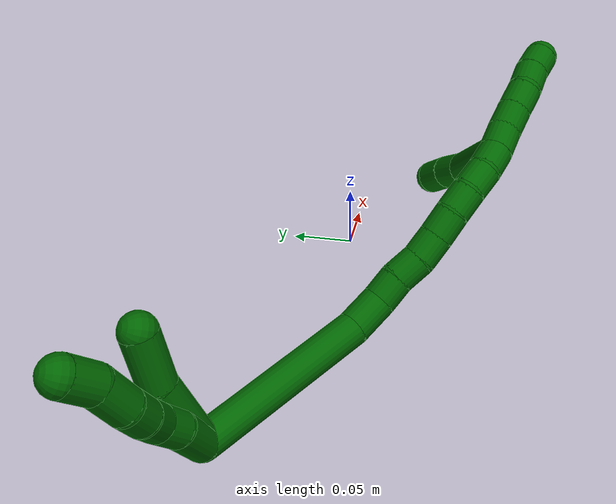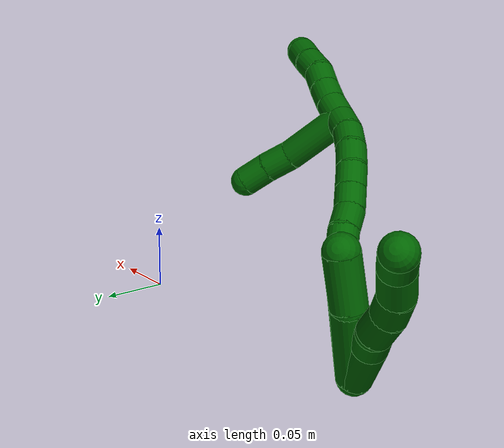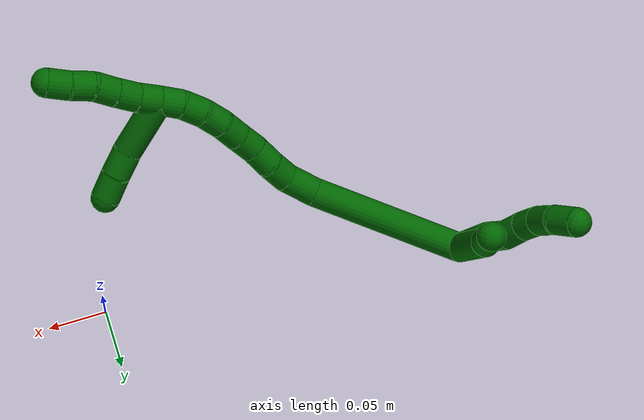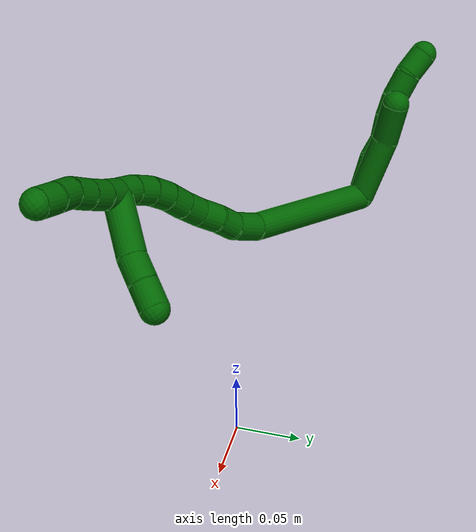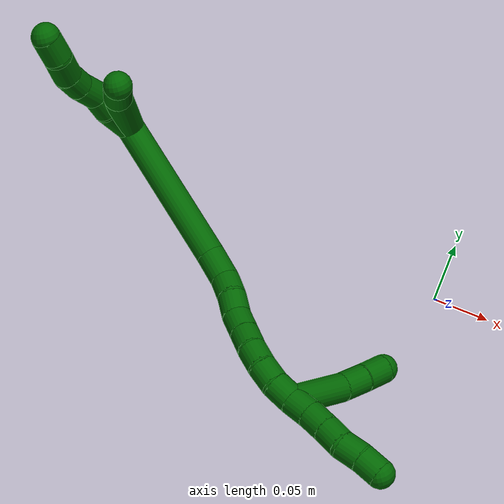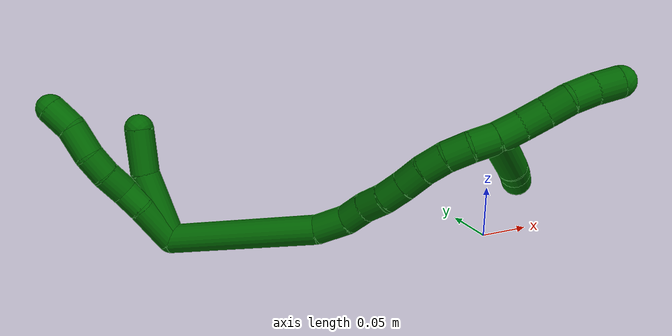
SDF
<sdf version="1.7">
 <world name="default">
  <model name="6">
   <static>0</static>
   <link name="6">
    <collision name="collision-cylinder-e_1_2_8">
     <pose>0.000185 -0.010948 0.015155 0.625622 0.009898 0.003201</pose>
     <geometry><cylinder><radius>0.0125</radius><length>0.037394</length></cylinder></geometry>
     <surface>
      <friction><ode><mu>1.16</mu><mu2>1.16</mu2><slip1>0</slip1><slip2>0</slip2></ode></friction>
      <contact><ode><kp>1e+06</kp><kd>1</kd><max_vel>0</max_vel><min_depth>0.001</min_depth></ode></contact>
     </surface>
    </collision>
    <visual name="visual-cylinder-e_1_2_8">
     <pose>0.000185 -0.010948 0.015155 0.625622 0.009898 0.003201</pose>
     <geometry><cylinder><radius>0.0125</radius><length>0.037394</length></cylinder></geometry>
     <material><ambient>0 0.392157 0.003922 1</ambient></material>
    </visual>
    <collision name="collision-cylinder-e_2_8_9">
     <pose>0.000195 -0.025958 0.039692 0.408565 -0.017139 -0.003551</pose>
     <geometry><cylinder><radius>0.0125</radius><length>0.020449</length></cylinder></geometry>
     <surface>
      <friction><ode><mu>1.16</mu><mu2>1.16</mu2><slip1>0</slip1><slip2>0</slip2></ode></friction>
      <contact><ode><kp>1e+06</kp><kd>1</kd><max_vel>0</max_vel><min_depth>0.001</min_depth></ode></contact>
     </surface>
    </collision>
    <visual name="visual-cylinder-e_2_8_9">
     <pose>0.000195 -0.025958 0.039692 0.408565 -0.017139 -0.003551</pose>
     <geometry><cylinder><radius>0.0125</radius><length>0.020449</length></cylinder></geometry>
     <material><ambient>0 0.392157 0.003922 1</ambient></material>
    </visual>
    <collision name="collision-cylinder-e_3_9_10">
     <pose>-0.001084 -0.037105 0.0575 0.699105 -0.099957 -0.036463</pose>
     <geometry><cylinder><radius>0.0125</radius><length>0.022128</length></cylinder></geometry>
     <surface>
      <friction><ode><mu>1.16</mu><mu2>1.16</mu2><slip1>0</slip1><slip2>0</slip2></ode></friction>
      <contact><ode><kp>1e+06</kp><kd>1</kd><max_vel>0</max_vel><min_depth>0.001</min_depth></ode></contact>
     </surface>
    </collision>
    <visual name="visual-cylinder-e_3_9_10">
     <pose>-0.001084 -0.037105 0.0575 0.699105 -0.099957 -0.036463</pose>
     <geometry><cylinder><radius>0.0125</radius><length>0.022128</length></cylinder></geometry>
     <material><ambient>0 0.392157 0.003922 1</ambient></material>
    </visual>
    <collision name="collision-cylinder-e_4_10_11">
     <pose>-0.0017 -0.049938 0.074248 0.604563 0.048231 0.015043</pose>
     <geometry><cylinder><radius>0.0125</radius><length>0.020252</length></cylinder></geometry>
     <surface>
      <friction><ode><mu>1.16</mu><mu2>1.16</mu2><slip1>0</slip1><slip2>0</slip2></ode></friction>
      <contact><ode><kp>1e+06</kp><kd>1</kd><max_vel>0</max_vel><min_depth>0.001</min_depth></ode></contact>
     </surface>
    </collision>
    <visual name="visual-cylinder-e_4_10_11">
     <pose>-0.0017 -0.049938 0.074248 0.604563 0.048231 0.015043</pose>
     <geometry><cylinder><radius>0.0125</radius><length>0.020252</length></cylinder></geometry>
     <material><ambient>0 0.392157 0.003922 1</ambient></material>
    </visual>
    <collision name="collision-cylinder-e_5_11_12">
     <pose>0.001828 -0.061288 0.094169 0.449824 0.231782 0.053254</pose>
     <geometry><cylinder><radius>0.0125</radius><length>0.02647</length></cylinder></geometry>
     <surface>
      <friction><ode><mu>1.16</mu><mu2>1.16</mu2><slip1>0</slip1><slip2>0</slip2></ode></friction>
      <contact><ode><kp>1e+06</kp><kd>1</kd><max_vel>0</max_vel><min_depth>0.001</min_depth></ode></contact>
     </surface>
    </collision>
    <visual name="visual-cylinder-e_5_11_12">
     <pose>0.001828 -0.061288 0.094169 0.449824 0.231782 0.053254</pose>
     <geometry><cylinder><radius>0.0125</radius><length>0.02647</length></cylinder></geometry>
     <material><ambient>0 0.392157 0.003922 1</ambient></material>
    </visual>
    <collision name="collision-cylinder-e_6_12_6">
     <pose>0.004833 -0.069959 0.11701 0.266597 -0.003029 -0.000406</pose>
     <geometry><cylinder><radius>0.0125</radius><length>0.023306</length></cylinder></geometry>
     <surface>
      <friction><ode><mu>1.16</mu><mu2>1.16</mu2><slip1>0</slip1><slip2>0</slip2></ode></friction>
      <contact><ode><kp>1e+06</kp><kd>1</kd><max_vel>0</max_vel><min_depth>0.001</min_depth></ode></contact>
     </surface>
    </collision>
    <visual name="visual-cylinder-e_6_12_6">
     <pose>0.004833 -0.069959 0.11701 0.266597 -0.003029 -0.000406</pose>
     <geometry><cylinder><radius>0.0125</radius><length>0.023306</length></cylinder></geometry>
     <material><ambient>0 0.392157 0.003922 1</ambient></material>
    </visual>
    <collision name="collision-cylinder-e_1_2_13">
     <pose>0.011478 -0.015153 0.023942 0.564263 0.384892 0.112844</pose>
     <geometry><cylinder><radius>0.0125</radius><length>0.061141</length></cylinder></geometry>
     <surface>
      <friction><ode><mu>1.16</mu><mu2>1.16</mu2><slip1>0</slip1><slip2>0</slip2></ode></friction>
      <contact><ode><kp>1e+06</kp><kd>1</kd><max_vel>0</max_vel><min_depth>0.001</min_depth></ode></contact>
     </surface>
    </collision>
    <visual name="visual-cylinder-e_1_2_13">
     <pose>0.011478 -0.015153 0.023942 0.564263 0.384892 0.112844</pose>
     <geometry><cylinder><radius>0.0125</radius><length>0.061141</length></cylinder></geometry>
     <material><ambient>0 0.392157 0.003922 1</ambient></material>
    </visual>
    <collision name="collision-cylinder-e_2_13_5">
     <pose>0.033833 -0.040995 0.059922 0.726062 0.594172 0.23155</pose>
     <geometry><cylinder><radius>0.0125</radius><length>0.038859</length></cylinder></geometry>
     <surface>
      <friction><ode><mu>1.16</mu><mu2>1.16</mu2><slip1>0</slip1><slip2>0</slip2></ode></friction>
      <contact><ode><kp>1e+06</kp><kd>1</kd><max_vel>0</max_vel><min_depth>0.001</min_depth></ode></contact>
     </surface>
    </collision>
    <visual name="visual-cylinder-e_2_13_5">
     <pose>0.033833 -0.040995 0.059922 0.726062 0.594172 0.23155</pose>
     <geometry><cylinder><radius>0.0125</radius><length>0.038859</length></cylinder></geometry>
     <material><ambient>0 0.392157 0.003922 1</ambient></material>
    </visual>
    <collision name="collision-cylinder-e_1_2_14">
     <pose>0.038749 -0.019944 -0.049766 2.76044 0.625833 2.06627</pose>
     <geometry><cylinder><radius>0.0125</radius><length>0.132301</length></cylinder></geometry>
     <surface>
      <friction><ode><mu>1.16</mu><mu2>1.16</mu2><slip1>0</slip1><slip2>0</slip2></ode></friction>
      <contact><ode><kp>1e+06</kp><kd>1</kd><max_vel>0</max_vel><min_depth>0.001</min_depth></ode></contact>
     </surface>
    </collision>
    <visual name="visual-cylinder-e_1_2_14">
     <pose>0.038749 -0.019944 -0.049766 2.76044 0.625833 2.06627</pose>
     <geometry><cylinder><radius>0.0125</radius><length>0.132301</length></cylinder></geometry>
     <material><ambient>0 0.392157 0.003922 1</ambient></material>
    </visual>
    <collision name="collision-cylinder-e_2_14_15">
     <pose>0.086731 -0.046533 -0.107312 2.43466 0.734106 1.61198</pose>
     <geometry><cylinder><radius>0.0125</radius><length>0.027564</length></cylinder></geometry>
     <surface>
      <friction><ode><mu>1.16</mu><mu2>1.16</mu2><slip1>0</slip1><slip2>0</slip2></ode></friction>
      <contact><ode><kp>1e+06</kp><kd>1</kd><max_vel>0</max_vel><min_depth>0.001</min_depth></ode></contact>
     </surface>
    </collision>
    <visual name="visual-cylinder-e_2_14_15">
     <pose>0.086731 -0.046533 -0.107312 2.43466 0.734106 1.61198</pose>
     <geometry><cylinder><radius>0.0125</radius><length>0.027564</length></cylinder></geometry>
     <material><ambient>0 0.392157 0.003922 1</ambient></material>
    </visual>
    <collision name="collision-cylinder-e_3_15_16">
     <pose>0.102392 -0.060039 -0.11855 2.03767 0.696754 1.06574</pose>
     <geometry><cylinder><radius>0.0125</radius><length>0.020035</length></cylinder></geometry>
     <surface>
      <friction><ode><mu>1.16</mu><mu2>1.16</mu2><slip1>0</slip1><slip2>0</slip2></ode></friction>
      <contact><ode><kp>1e+06</kp><kd>1</kd><max_vel>0</max_vel><min_depth>0.001</min_depth></ode></contact>
     </surface>
    </collision>
    <visual name="visual-cylinder-e_3_15_16">
     <pose>0.102392 -0.060039 -0.11855 2.03767 0.696754 1.06574</pose>
     <geometry><cylinder><radius>0.0125</radius><length>0.020035</length></cylinder></geometry>
     <material><ambient>0 0.392157 0.003922 1</ambient></material>
    </visual>
    <collision name="collision-cylinder-e_4_16_17">
     <pose>0.114053 -0.074018 -0.126769 2.16025 0.548395 0.969245</pose>
     <geometry><cylinder><radius>0.0125</radius><length>0.020071</length></cylinder></geometry>
     <surface>
      <friction><ode><mu>1.16</mu><mu2>1.16</mu2><slip1>0</slip1><slip2>0</slip2></ode></friction>
      <contact><ode><kp>1e+06</kp><kd>1</kd><max_vel>0</max_vel><min_depth>0.001</min_depth></ode></contact>
     </surface>
    </collision>
    <visual name="visual-cylinder-e_4_16_17">
     <pose>0.114053 -0.074018 -0.126769 2.16025 0.548395 0.969245</pose>
     <geometry><cylinder><radius>0.0125</radius><length>0.020071</length></cylinder></geometry>
     <material><ambient>0 0.392157 0.003922 1</ambient></material>
    </visual>
    <collision name="collision-cylinder-e_5_17_18">
     <pose>0.126035 -0.087677 -0.13498 2.05624 0.739916 1.14297</pose>
     <geometry><cylinder><radius>0.0125</radius><length>0.020024</length></cylinder></geometry>
     <surface>
      <friction><ode><mu>1.16</mu><mu2>1.16</mu2><slip1>0</slip1><slip2>0</slip2></ode></friction>
      <contact><ode><kp>1e+06</kp><kd>1</kd><max_vel>0</max_vel><min_depth>0.001</min_depth></ode></contact>
     </surface>
    </collision>
    <visual name="visual-cylinder-e_5_17_18">
     <pose>0.126035 -0.087677 -0.13498 2.05624 0.739916 1.14297</pose>
     <geometry><cylinder><radius>0.0125</radius><length>0.020024</length></cylinder></geometry>
     <material><ambient>0 0.392157 0.003922 1</ambient></material>
    </visual>
    <collision name="collision-cylinder-e_6_18_19">
     <pose>0.139605 -0.100951 -0.141292 1.97266 0.750261 1.07378</pose>
     <geometry><cylinder><radius>0.0125</radius><length>0.020005</length></cylinder></geometry>
     <surface>
      <friction><ode><mu>1.16</mu><mu2>1.16</mu2><slip1>0</slip1><slip2>0</slip2></ode></friction>
      <contact><ode><kp>1e+06</kp><kd>1</kd><max_vel>0</max_vel><min_depth>0.001</min_depth></ode></contact>
     </surface>
    </collision>
    <visual name="visual-cylinder-e_6_18_19">
     <pose>0.139605 -0.100951 -0.141292 1.97266 0.750261 1.07378</pose>
     <geometry><cylinder><radius>0.0125</radius><length>0.020005</length></cylinder></geometry>
     <material><ambient>0 0.392157 0.003922 1</ambient></material>
    </visual>
    <collision name="collision-cylinder-e_7_19_20">
     <pose>0.153583 -0.113431 -0.148121 2.17507 0.797846 1.35346</pose>
     <geometry><cylinder><radius>0.0125</radius><length>0.02</length></cylinder></geometry>
     <surface>
      <friction><ode><mu>1.16</mu><mu2>1.16</mu2><slip1>0</slip1><slip2>0</slip2></ode></friction>
      <contact><ode><kp>1e+06</kp><kd>1</kd><max_vel>0</max_vel><min_depth>0.001</min_depth></ode></contact>
     </surface>
    </collision>
    <visual name="visual-cylinder-e_7_19_20">
     <pose>0.153583 -0.113431 -0.148121 2.17507 0.797846 1.35346</pose>
     <geometry><cylinder><radius>0.0125</radius><length>0.02</length></cylinder></geometry>
     <material><ambient>0 0.392157 0.003922 1</ambient></material>
    </visual>
    <collision name="collision-cylinder-e_8_20_21">
     <pose>0.16816 -0.123442 -0.157263 2.4523 0.835734 1.78183</pose>
     <geometry><cylinder><radius>0.0125</radius><length>0.02</length></cylinder></geometry>
     <surface>
      <friction><ode><mu>1.16</mu><mu2>1.16</mu2><slip1>0</slip1><slip2>0</slip2></ode></friction>
      <contact><ode><kp>1e+06</kp><kd>1</kd><max_vel>0</max_vel><min_depth>0.001</min_depth></ode></contact>
     </surface>
    </collision>
    <visual name="visual-cylinder-e_8_20_21">
     <pose>0.16816 -0.123442 -0.157263 2.4523 0.835734 1.78183</pose>
     <geometry><cylinder><radius>0.0125</radius><length>0.02</length></cylinder></geometry>
     <material><ambient>0 0.392157 0.003922 1</ambient></material>
    </visual>
    <collision name="collision-cylinder-e_9_21_1">
     <pose>0.183642 -0.129948 -0.167912 2.75308 0.938002 2.4009</pose>
     <geometry><cylinder><radius>0.0125</radius><length>0.02</length></cylinder></geometry>
     <surface>
      <friction><ode><mu>1.16</mu><mu2>1.16</mu2><slip1>0</slip1><slip2>0</slip2></ode></friction>
      <contact><ode><kp>1e+06</kp><kd>1</kd><max_vel>0</max_vel><min_depth>0.001</min_depth></ode></contact>
     </surface>
    </collision>
    <visual name="visual-cylinder-e_9_21_1">
     <pose>0.183642 -0.129948 -0.167912 2.75308 0.938002 2.4009</pose>
     <geometry><cylinder><radius>0.0125</radius><length>0.02</length></cylinder></geometry>
     <material><ambient>0 0.392157 0.003922 1</ambient></material>
    </visual>
    <collision name="collision-cylinder-e_1_1_22">
     <pose>0.199728 -0.108216 -0.183096 -1.9557 0.300773 -0.442399</pose>
     <geometry><cylinder><radius>0.0125</radius><length>0.054159</length></cylinder></geometry>
     <surface>
      <friction><ode><mu>1.16</mu><mu2>1.16</mu2><slip1>0</slip1><slip2>0</slip2></ode></friction>
      <contact><ode><kp>1e+06</kp><kd>1</kd><max_vel>0</max_vel><min_depth>0.001</min_depth></ode></contact>
     </surface>
    </collision>
    <visual name="visual-cylinder-e_1_1_22">
     <pose>0.199728 -0.108216 -0.183096 -1.9557 0.300773 -0.442399</pose>
     <geometry><cylinder><radius>0.0125</radius><length>0.054159</length></cylinder></geometry>
     <material><ambient>0 0.392157 0.003922 1</ambient></material>
    </visual>
    <collision name="collision-cylinder-e_2_22_23">
     <pose>0.212162 -0.073751 -0.194943 -1.77156 0.390788 -0.475352</pose>
     <geometry><cylinder><radius>0.0125</radius><length>0.023164</length></cylinder></geometry>
     <surface>
      <friction><ode><mu>1.16</mu><mu2>1.16</mu2><slip1>0</slip1><slip2>0</slip2></ode></friction>
      <contact><ode><kp>1e+06</kp><kd>1</kd><max_vel>0</max_vel><min_depth>0.001</min_depth></ode></contact>
     </surface>
    </collision>
    <visual name="visual-cylinder-e_2_22_23">
     <pose>0.212162 -0.073751 -0.194943 -1.77156 0.390788 -0.475352</pose>
     <geometry><cylinder><radius>0.0125</radius><length>0.023164</length></cylinder></geometry>
     <material><ambient>0 0.392157 0.003922 1</ambient></material>
    </visual>
    <collision name="collision-cylinder-e_3_23_4">
     <pose>0.220096 -0.052717 -0.199327 -1.78094 0.315837 -0.38862</pose>
     <geometry><cylinder><radius>0.0125</radius><length>0.022677</length></cylinder></geometry>
     <surface>
      <friction><ode><mu>1.16</mu><mu2>1.16</mu2><slip1>0</slip1><slip2>0</slip2></ode></friction>
      <contact><ode><kp>1e+06</kp><kd>1</kd><max_vel>0</max_vel><min_depth>0.001</min_depth></ode></contact>
     </surface>
    </collision>
    <visual name="visual-cylinder-e_3_23_4">
     <pose>0.220096 -0.052717 -0.199327 -1.78094 0.315837 -0.38862</pose>
     <geometry><cylinder><radius>0.0125</radius><length>0.022677</length></cylinder></geometry>
     <material><ambient>0 0.392157 0.003922 1</ambient></material>
    </visual>
    <collision name="collision-cylinder-e_1_1_24">
     <pose>0.200472 -0.134583 -0.177558 2.62057 1.06888 2.29527</pose>
     <geometry><cylinder><radius>0.0125</radius><length>0.02</length></cylinder></geometry>
     <surface>
      <friction><ode><mu>1.16</mu><mu2>1.16</mu2><slip1>0</slip1><slip2>0</slip2></ode></friction>
      <contact><ode><kp>1e+06</kp><kd>1</kd><max_vel>0</max_vel><min_depth>0.001</min_depth></ode></contact>
     </surface>
    </collision>
    <visual name="visual-cylinder-e_1_1_24">
     <pose>0.200472 -0.134583 -0.177558 2.62057 1.06888 2.29527</pose>
     <geometry><cylinder><radius>0.0125</radius><length>0.02</length></cylinder></geometry>
     <material><ambient>0 0.392157 0.003922 1</ambient></material>
    </visual>
    <collision name="collision-cylinder-e_2_24_25">
     <pose>0.217758 -0.140313 -0.185767 2.45091 1.01966 1.99813</pose>
     <geometry><cylinder><radius>0.0125</radius><length>0.02</length></cylinder></geometry>
     <surface>
      <friction><ode><mu>1.16</mu><mu2>1.16</mu2><slip1>0</slip1><slip2>0</slip2></ode></friction>
      <contact><ode><kp>1e+06</kp><kd>1</kd><max_vel>0</max_vel><min_depth>0.001</min_depth></ode></contact>
     </surface>
    </collision>
    <visual name="visual-cylinder-e_2_24_25">
     <pose>0.217758 -0.140313 -0.185767 2.45091 1.01966 1.99813</pose>
     <geometry><cylinder><radius>0.0125</radius><length>0.02</length></cylinder></geometry>
     <material><ambient>0 0.392157 0.003922 1</ambient></material>
    </visual>
    <collision name="collision-cylinder-e_3_25_26">
     <pose>0.23464 -0.147422 -0.193782 2.38269 0.990472 1.86966</pose>
     <geometry><cylinder><radius>0.0125</radius><length>0.02</length></cylinder></geometry>
     <surface>
      <friction><ode><mu>1.16</mu><mu2>1.16</mu2><slip1>0</slip1><slip2>0</slip2></ode></friction>
      <contact><ode><kp>1e+06</kp><kd>1</kd><max_vel>0</max_vel><min_depth>0.001</min_depth></ode></contact>
     </surface>
    </collision>
    <visual name="visual-cylinder-e_3_25_26">
     <pose>0.23464 -0.147422 -0.193782 2.38269 0.990472 1.86966</pose>
     <geometry><cylinder><radius>0.0125</radius><length>0.02</length></cylinder></geometry>
     <material><ambient>0 0.392157 0.003922 1</ambient></material>
    </visual>
    <collision name="collision-cylinder-e_4_26_27">
     <pose>0.25175 -0.152306 -0.202477 2.91044 1.06487 2.7525</pose>
     <geometry><cylinder><radius>0.0125</radius><length>0.02</length></cylinder></geometry>
     <surface>
      <friction><ode><mu>1.16</mu><mu2>1.16</mu2><slip1>0</slip1><slip2>0</slip2></ode></friction>
      <contact><ode><kp>1e+06</kp><kd>1</kd><max_vel>0</max_vel><min_depth>0.001</min_depth></ode></contact>
     </surface>
    </collision>
    <visual name="visual-cylinder-e_4_26_27">
     <pose>0.25175 -0.152306 -0.202477 2.91044 1.06487 2.7525</pose>
     <geometry><cylinder><radius>0.0125</radius><length>0.02</length></cylinder></geometry>
     <material><ambient>0 0.392157 0.003922 1</ambient></material>
    </visual>
    <collision name="collision-cylinder-e_5_27_3">
     <pose>0.268541 -0.155055 -0.212907 2.86221 0.934474 2.59796</pose>
     <geometry><cylinder><radius>0.0125</radius><length>0.02</length></cylinder></geometry>
     <surface>
      <friction><ode><mu>1.16</mu><mu2>1.16</mu2><slip1>0</slip1><slip2>0</slip2></ode></friction>
      <contact><ode><kp>1e+06</kp><kd>1</kd><max_vel>0</max_vel><min_depth>0.001</min_depth></ode></contact>
     </surface>
    </collision>
    <visual name="visual-cylinder-e_5_27_3">
     <pose>0.268541 -0.155055 -0.212907 2.86221 0.934474 2.59796</pose>
     <geometry><cylinder><radius>0.0125</radius><length>0.02</length></cylinder></geometry>
     <material><ambient>0 0.392157 0.003922 1</ambient></material>
    </visual>
    <collision name="collision-sphere-3">
     <pose>0.276583 -0.156693 -0.218619 0 -0 0</pose>
     <geometry><sphere><radius>0.0125</radius></sphere></geometry>
     <surface>
      <friction><ode><mu>1.16</mu><mu2>1.16</mu2><slip1>0</slip1><slip2>0</slip2></ode></friction>
      <contact><ode><kp>1e+06</kp><kd>1</kd><max_vel>0</max_vel><min_depth>0.001</min_depth></ode></contact>
     </surface>
    </collision>
    <visual name="visual-sphere-3">
     <pose>0.276583 -0.156693 -0.218619 0 -0 0</pose>
     <geometry><sphere><radius>0.0125</radius></sphere></geometry>
     <material><ambient>0 0.392157 0.003922 1</ambient></material>
    </visual>
    <collision name="collision-sphere-27">
     <pose>0.260498 -0.153416 -0.207195 0 -0 0</pose>
     <geometry><sphere><radius>0.0125</radius></sphere></geometry>
     <surface>
      <friction><ode><mu>1.16</mu><mu2>1.16</mu2><slip1>0</slip1><slip2>0</slip2></ode></friction>
      <contact><ode><kp>1e+06</kp><kd>1</kd><max_vel>0</max_vel><min_depth>0.001</min_depth></ode></contact>
     </surface>
    </collision>
    <visual name="visual-sphere-27">
     <pose>0.260498 -0.153416 -0.207195 0 -0 0</pose>
     <geometry><sphere><radius>0.0125</radius></sphere></geometry>
     <material><ambient>0 0.392157 0.003922 1</ambient></material>
    </visual>
    <collision name="collision-sphere-26">
     <pose>0.243003 -0.151195 -0.19776 0 -0 0</pose>
     <geometry><sphere><radius>0.0125</radius></sphere></geometry>
     <surface>
      <friction><ode><mu>1.16</mu><mu2>1.16</mu2><slip1>0</slip1><slip2>0</slip2></ode></friction>
      <contact><ode><kp>1e+06</kp><kd>1</kd><max_vel>0</max_vel><min_depth>0.001</min_depth></ode></contact>
     </surface>
    </collision>
    <visual name="visual-sphere-26">
     <pose>0.243003 -0.151195 -0.19776 0 -0 0</pose>
     <geometry><sphere><radius>0.0125</radius></sphere></geometry>
     <material><ambient>0 0.392157 0.003922 1</ambient></material>
    </visual>
    <collision name="collision-sphere-25">
     <pose>0.226277 -0.143649 -0.189803 0 -0 0</pose>
     <geometry><sphere><radius>0.0125</radius></sphere></geometry>
     <surface>
      <friction><ode><mu>1.16</mu><mu2>1.16</mu2><slip1>0</slip1><slip2>0</slip2></ode></friction>
      <contact><ode><kp>1e+06</kp><kd>1</kd><max_vel>0</max_vel><min_depth>0.001</min_depth></ode></contact>
     </surface>
    </collision>
    <visual name="visual-sphere-25">
     <pose>0.226277 -0.143649 -0.189803 0 -0 0</pose>
     <geometry><sphere><radius>0.0125</radius></sphere></geometry>
     <material><ambient>0 0.392157 0.003922 1</ambient></material>
    </visual>
    <collision name="collision-sphere-24">
     <pose>0.209239 -0.136977 -0.181731 0 -0 0</pose>
     <geometry><sphere><radius>0.0125</radius></sphere></geometry>
     <surface>
      <friction><ode><mu>1.16</mu><mu2>1.16</mu2><slip1>0</slip1><slip2>0</slip2></ode></friction>
      <contact><ode><kp>1e+06</kp><kd>1</kd><max_vel>0</max_vel><min_depth>0.001</min_depth></ode></contact>
     </surface>
    </collision>
    <visual name="visual-sphere-24">
     <pose>0.209239 -0.136977 -0.181731 0 -0 0</pose>
     <geometry><sphere><radius>0.0125</radius></sphere></geometry>
     <material><ambient>0 0.392157 0.003922 1</ambient></material>
    </visual>
    <collision name="collision-sphere-4">
     <pose>0.223618 -0.042176 -0.201575 0 -0 0</pose>
     <geometry><sphere><radius>0.0125</radius></sphere></geometry>
     <surface>
      <friction><ode><mu>1.16</mu><mu2>1.16</mu2><slip1>0</slip1><slip2>0</slip2></ode></friction>
      <contact><ode><kp>1e+06</kp><kd>1</kd><max_vel>0</max_vel><min_depth>0.001</min_depth></ode></contact>
     </surface>
    </collision>
    <visual name="visual-sphere-4">
     <pose>0.223618 -0.042176 -0.201575 0 -0 0</pose>
     <geometry><sphere><radius>0.0125</radius></sphere></geometry>
     <material><ambient>0 0.392157 0.003922 1</ambient></material>
    </visual>
    <collision name="collision-sphere-23">
     <pose>0.216574 -0.063257 -0.197078 0 -0 0</pose>
     <geometry><sphere><radius>0.0125</radius></sphere></geometry>
     <surface>
      <friction><ode><mu>1.16</mu><mu2>1.16</mu2><slip1>0</slip1><slip2>0</slip2></ode></friction>
      <contact><ode><kp>1e+06</kp><kd>1</kd><max_vel>0</max_vel><min_depth>0.001</min_depth></ode></contact>
     </surface>
    </collision>
    <visual name="visual-sphere-23">
     <pose>0.216574 -0.063257 -0.197078 0 -0 0</pose>
     <geometry><sphere><radius>0.0125</radius></sphere></geometry>
     <material><ambient>0 0.392157 0.003922 1</ambient></material>
    </visual>
    <collision name="collision-sphere-22">
     <pose>0.207751 -0.084245 -0.192807 0 -0 0</pose>
     <geometry><sphere><radius>0.0125</radius></sphere></geometry>
     <surface>
      <friction><ode><mu>1.16</mu><mu2>1.16</mu2><slip1>0</slip1><slip2>0</slip2></ode></friction>
      <contact><ode><kp>1e+06</kp><kd>1</kd><max_vel>0</max_vel><min_depth>0.001</min_depth></ode></contact>
     </surface>
    </collision>
    <visual name="visual-sphere-22">
     <pose>0.207751 -0.084245 -0.192807 0 -0 0</pose>
     <geometry><sphere><radius>0.0125</radius></sphere></geometry>
     <material><ambient>0 0.392157 0.003922 1</ambient></material>
    </visual>
    <collision name="collision-sphere-1">
     <pose>0.191706 -0.132188 -0.173385 0 -0 0</pose>
     <geometry><sphere><radius>0.0125</radius></sphere></geometry>
     <surface>
      <friction><ode><mu>1.16</mu><mu2>1.16</mu2><slip1>0</slip1><slip2>0</slip2></ode></friction>
      <contact><ode><kp>1e+06</kp><kd>1</kd><max_vel>0</max_vel><min_depth>0.001</min_depth></ode></contact>
     </surface>
    </collision>
    <visual name="visual-sphere-1">
     <pose>0.191706 -0.132188 -0.173385 0 -0 0</pose>
     <geometry><sphere><radius>0.0125</radius></sphere></geometry>
     <material><ambient>0 0.392157 0.003922 1</ambient></material>
    </visual>
    <collision name="collision-sphere-21">
     <pose>0.175578 -0.127707 -0.162439 0 -0 0</pose>
     <geometry><sphere><radius>0.0125</radius></sphere></geometry>
     <surface>
      <friction><ode><mu>1.16</mu><mu2>1.16</mu2><slip1>0</slip1><slip2>0</slip2></ode></friction>
      <contact><ode><kp>1e+06</kp><kd>1</kd><max_vel>0</max_vel><min_depth>0.001</min_depth></ode></contact>
     </surface>
    </collision>
    <visual name="visual-sphere-21">
     <pose>0.175578 -0.127707 -0.162439 0 -0 0</pose>
     <geometry><sphere><radius>0.0125</radius></sphere></geometry>
     <material><ambient>0 0.392157 0.003922 1</ambient></material>
    </visual>
    <collision name="collision-sphere-12">
     <pose>0.004868 -0.066889 0.105769 0 -0 0</pose>
     <geometry><sphere><radius>0.0125</radius></sphere></geometry>
     <surface>
      <friction><ode><mu>1.16</mu><mu2>1.16</mu2><slip1>0</slip1><slip2>0</slip2></ode></friction>
      <contact><ode><kp>1e+06</kp><kd>1</kd><max_vel>0</max_vel><min_depth>0.001</min_depth></ode></contact>
     </surface>
    </collision>
    <visual name="visual-sphere-12">
     <pose>0.004868 -0.066889 0.105769 0 -0 0</pose>
     <geometry><sphere><radius>0.0125</radius></sphere></geometry>
     <material><ambient>0 0.392157 0.003922 1</ambient></material>
    </visual>
    <collision name="collision-sphere-11">
     <pose>-0.001212 -0.055687 0.082569 0 -0 0</pose>
     <geometry><sphere><radius>0.0125</radius></sphere></geometry>
     <surface>
      <friction><ode><mu>1.16</mu><mu2>1.16</mu2><slip1>0</slip1><slip2>0</slip2></ode></friction>
      <contact><ode><kp>1e+06</kp><kd>1</kd><max_vel>0</max_vel><min_depth>0.001</min_depth></ode></contact>
     </surface>
    </collision>
    <visual name="visual-sphere-11">
     <pose>-0.001212 -0.055687 0.082569 0 -0 0</pose>
     <geometry><sphere><radius>0.0125</radius></sphere></geometry>
     <material><ambient>0 0.392157 0.003922 1</ambient></material>
    </visual>
    <collision name="collision-sphere-10">
     <pose>-0.002189 -0.044189 0.065926 0 -0 0</pose>
     <geometry><sphere><radius>0.0125</radius></sphere></geometry>
     <surface>
      <friction><ode><mu>1.16</mu><mu2>1.16</mu2><slip1>0</slip1><slip2>0</slip2></ode></friction>
      <contact><ode><kp>1e+06</kp><kd>1</kd><max_vel>0</max_vel><min_depth>0.001</min_depth></ode></contact>
     </surface>
    </collision>
    <visual name="visual-sphere-10">
     <pose>-0.002189 -0.044189 0.065926 0 -0 0</pose>
     <geometry><sphere><radius>0.0125</radius></sphere></geometry>
     <material><ambient>0 0.392157 0.003922 1</ambient></material>
    </visual>
    <collision name="collision-sphere-9">
     <pose>2e-05 -0.03002 0.049073 0 -0 0</pose>
     <geometry><sphere><radius>0.0125</radius></sphere></geometry>
     <surface>
      <friction><ode><mu>1.16</mu><mu2>1.16</mu2><slip1>0</slip1><slip2>0</slip2></ode></friction>
      <contact><ode><kp>1e+06</kp><kd>1</kd><max_vel>0</max_vel><min_depth>0.001</min_depth></ode></contact>
     </surface>
    </collision>
    <visual name="visual-sphere-9">
     <pose>2e-05 -0.03002 0.049073 0 -0 0</pose>
     <geometry><sphere><radius>0.0125</radius></sphere></geometry>
     <material><ambient>0 0.392157 0.003922 1</ambient></material>
    </visual>
    <collision name="collision-sphere-2">
     <geometry><sphere><radius>0.0125</radius></sphere></geometry>
     <surface>
      <friction><ode><mu>1.16</mu><mu2>1.16</mu2><slip1>0</slip1><slip2>0</slip2></ode></friction>
      <contact><ode><kp>1e+06</kp><kd>1</kd><max_vel>0</max_vel><min_depth>0.001</min_depth></ode></contact>
     </surface>
    </collision>
    <visual name="visual-sphere-2">
     <geometry><sphere><radius>0.0125</radius></sphere></geometry>
     <material><ambient>0 0.392157 0.003922 1</ambient></material>
    </visual>
    <collision name="collision-sphere-19">
     <pose>0.146425 -0.107685 -0.144153 0 -0 0</pose>
     <geometry><sphere><radius>0.0125</radius></sphere></geometry>
     <surface>
      <friction><ode><mu>1.16</mu><mu2>1.16</mu2><slip1>0</slip1><slip2>0</slip2></ode></friction>
      <contact><ode><kp>1e+06</kp><kd>1</kd><max_vel>0</max_vel><min_depth>0.001</min_depth></ode></contact>
     </surface>
    </collision>
    <visual name="visual-sphere-19">
     <pose>0.146425 -0.107685 -0.144153 0 -0 0</pose>
     <geometry><sphere><radius>0.0125</radius></sphere></geometry>
     <material><ambient>0 0.392157 0.003922 1</ambient></material>
    </visual>
    <collision name="collision-sphere-8">
     <pose>0.00037 -0.021897 0.03031 0 -0 0</pose>
     <geometry><sphere><radius>0.0125</radius></sphere></geometry>
     <surface>
      <friction><ode><mu>1.16</mu><mu2>1.16</mu2><slip1>0</slip1><slip2>0</slip2></ode></friction>
      <contact><ode><kp>1e+06</kp><kd>1</kd><max_vel>0</max_vel><min_depth>0.001</min_depth></ode></contact>
     </surface>
    </collision>
    <visual name="visual-sphere-8">
     <pose>0.00037 -0.021897 0.03031 0 -0 0</pose>
     <geometry><sphere><radius>0.0125</radius></sphere></geometry>
     <material><ambient>0 0.392157 0.003922 1</ambient></material>
    </visual>
    <collision name="collision-sphere-6">
     <pose>0.004798 -0.073029 0.128252 0 -0 0</pose>
     <geometry><sphere><radius>0.0125</radius></sphere></geometry>
     <surface>
      <friction><ode><mu>1.16</mu><mu2>1.16</mu2><slip1>0</slip1><slip2>0</slip2></ode></friction>
      <contact><ode><kp>1e+06</kp><kd>1</kd><max_vel>0</max_vel><min_depth>0.001</min_depth></ode></contact>
     </surface>
    </collision>
    <visual name="visual-sphere-6">
     <pose>0.004798 -0.073029 0.128252 0 -0 0</pose>
     <geometry><sphere><radius>0.0125</radius></sphere></geometry>
     <material><ambient>0 0.392157 0.003922 1</ambient></material>
    </visual>
    <collision name="collision-sphere-13">
     <pose>0.022956 -0.030305 0.047883 0 -0 0</pose>
     <geometry><sphere><radius>0.0125</radius></sphere></geometry>
     <surface>
      <friction><ode><mu>1.16</mu><mu2>1.16</mu2><slip1>0</slip1><slip2>0</slip2></ode></friction>
      <contact><ode><kp>1e+06</kp><kd>1</kd><max_vel>0</max_vel><min_depth>0.001</min_depth></ode></contact>
     </surface>
    </collision>
    <visual name="visual-sphere-13">
     <pose>0.022956 -0.030305 0.047883 0 -0 0</pose>
     <geometry><sphere><radius>0.0125</radius></sphere></geometry>
     <material><ambient>0 0.392157 0.003922 1</ambient></material>
    </visual>
    <collision name="collision-sphere-5">
     <pose>0.04471 -0.051684 0.071962 0 -0 0</pose>
     <geometry><sphere><radius>0.0125</radius></sphere></geometry>
     <surface>
      <friction><ode><mu>1.16</mu><mu2>1.16</mu2><slip1>0</slip1><slip2>0</slip2></ode></friction>
      <contact><ode><kp>1e+06</kp><kd>1</kd><max_vel>0</max_vel><min_depth>0.001</min_depth></ode></contact>
     </surface>
    </collision>
    <visual name="visual-sphere-5">
     <pose>0.04471 -0.051684 0.071962 0 -0 0</pose>
     <geometry><sphere><radius>0.0125</radius></sphere></geometry>
     <material><ambient>0 0.392157 0.003922 1</ambient></material>
    </visual>
    <collision name="collision-sphere-14">
     <pose>0.077498 -0.039887 -0.099532 0 -0 0</pose>
     <geometry><sphere><radius>0.0125</radius></sphere></geometry>
     <surface>
      <friction><ode><mu>1.16</mu><mu2>1.16</mu2><slip1>0</slip1><slip2>0</slip2></ode></friction>
      <contact><ode><kp>1e+06</kp><kd>1</kd><max_vel>0</max_vel><min_depth>0.001</min_depth></ode></contact>
     </surface>
    </collision>
    <visual name="visual-sphere-14">
     <pose>0.077498 -0.039887 -0.099532 0 -0 0</pose>
     <geometry><sphere><radius>0.0125</radius></sphere></geometry>
     <material><ambient>0 0.392157 0.003922 1</ambient></material>
    </visual>
    <collision name="collision-sphere-15">
     <pose>0.095964 -0.053179 -0.115092 0 -0 0</pose>
     <geometry><sphere><radius>0.0125</radius></sphere></geometry>
     <surface>
      <friction><ode><mu>1.16</mu><mu2>1.16</mu2><slip1>0</slip1><slip2>0</slip2></ode></friction>
      <contact><ode><kp>1e+06</kp><kd>1</kd><max_vel>0</max_vel><min_depth>0.001</min_depth></ode></contact>
     </surface>
    </collision>
    <visual name="visual-sphere-15">
     <pose>0.095964 -0.053179 -0.115092 0 -0 0</pose>
     <geometry><sphere><radius>0.0125</radius></sphere></geometry>
     <material><ambient>0 0.392157 0.003922 1</ambient></material>
    </visual>
    <collision name="collision-sphere-16">
     <pose>0.108821 -0.0669 -0.122008 0 -0 0</pose>
     <geometry><sphere><radius>0.0125</radius></sphere></geometry>
     <surface>
      <friction><ode><mu>1.16</mu><mu2>1.16</mu2><slip1>0</slip1><slip2>0</slip2></ode></friction>
      <contact><ode><kp>1e+06</kp><kd>1</kd><max_vel>0</max_vel><min_depth>0.001</min_depth></ode></contact>
     </surface>
    </collision>
    <visual name="visual-sphere-16">
     <pose>0.108821 -0.0669 -0.122008 0 -0 0</pose>
     <geometry><sphere><radius>0.0125</radius></sphere></geometry>
     <material><ambient>0 0.392157 0.003922 1</ambient></material>
    </visual>
    <collision name="collision-sphere-17">
     <pose>0.119284 -0.081137 -0.13153 0 -0 0</pose>
     <geometry><sphere><radius>0.0125</radius></sphere></geometry>
     <surface>
      <friction><ode><mu>1.16</mu><mu2>1.16</mu2><slip1>0</slip1><slip2>0</slip2></ode></friction>
      <contact><ode><kp>1e+06</kp><kd>1</kd><max_vel>0</max_vel><min_depth>0.001</min_depth></ode></contact>
     </surface>
    </collision>
    <visual name="visual-sphere-17">
     <pose>0.119284 -0.081137 -0.13153 0 -0 0</pose>
     <geometry><sphere><radius>0.0125</radius></sphere></geometry>
     <material><ambient>0 0.392157 0.003922 1</ambient></material>
    </visual>
    <collision name="collision-sphere-18">
     <pose>0.132785 -0.094217 -0.13843 0 -0 0</pose>
     <geometry><sphere><radius>0.0125</radius></sphere></geometry>
     <surface>
      <friction><ode><mu>1.16</mu><mu2>1.16</mu2><slip1>0</slip1><slip2>0</slip2></ode></friction>
      <contact><ode><kp>1e+06</kp><kd>1</kd><max_vel>0</max_vel><min_depth>0.001</min_depth></ode></contact>
     </surface>
    </collision>
    <visual name="visual-sphere-18">
     <pose>0.132785 -0.094217 -0.13843 0 -0 0</pose>
     <geometry><sphere><radius>0.0125</radius></sphere></geometry>
     <material><ambient>0 0.392157 0.003922 1</ambient></material>
    </visual>
    <collision name="collision-sphere-20">
     <pose>0.160742 -0.119177 -0.152088 0 -0 0</pose>
     <geometry><sphere><radius>0.0125</radius></sphere></geometry>
     <surface>
      <friction><ode><mu>1.16</mu><mu2>1.16</mu2><slip1>0</slip1><slip2>0</slip2></ode></friction>
      <contact><ode><kp>1e+06</kp><kd>1</kd><max_vel>0</max_vel><min_depth>0.001</min_depth></ode></contact>
     </surface>
    </collision>
    <visual name="visual-sphere-20">
     <pose>0.160742 -0.119177 -0.152088 0 -0 0</pose>
     <geometry><sphere><radius>0.0125</radius></sphere></geometry>
     <material><ambient>0 0.392157 0.003922 1</ambient></material>
    </visual>
    <inertial>
     <pose>0.098131 -0.066166 -0.072923 0 -0 0</pose>
     <mass>0.75</mass>
     <inertia>
      <ixx>0.000155</ixx>
      <ixy>0</ixy>
      <ixz>0</ixz>
      <iyy>0.000304</iyy>
      <iyz>0</iyz>
      <izz>-7.9e-05</izz>
     </inertia>
    </inertial>
   </link>
   <pose>-0.302292 0.041407 0.03371 -0.953614 -0.566765 0.295595</pose>
  </model>
 </world>
</sdf>
